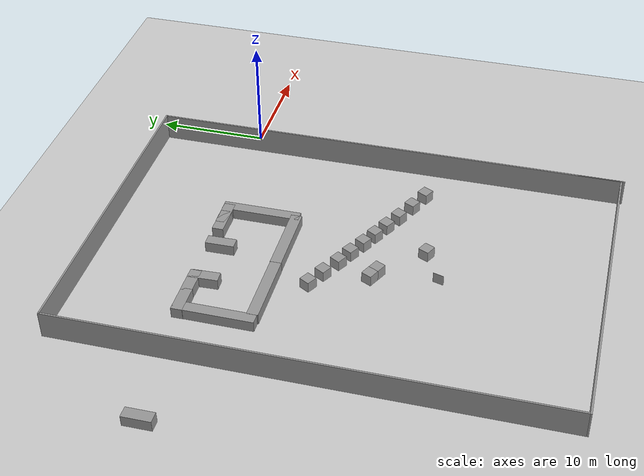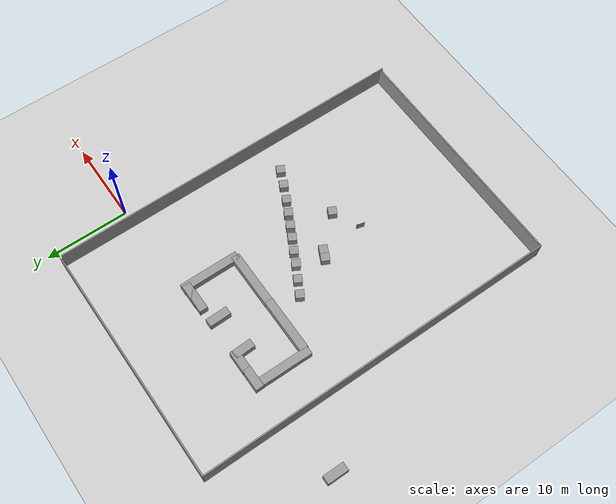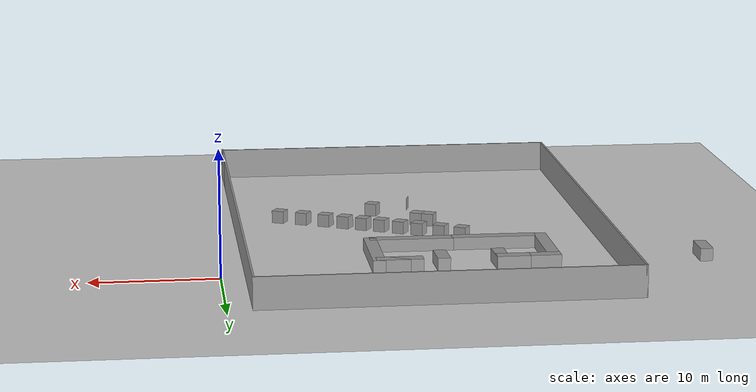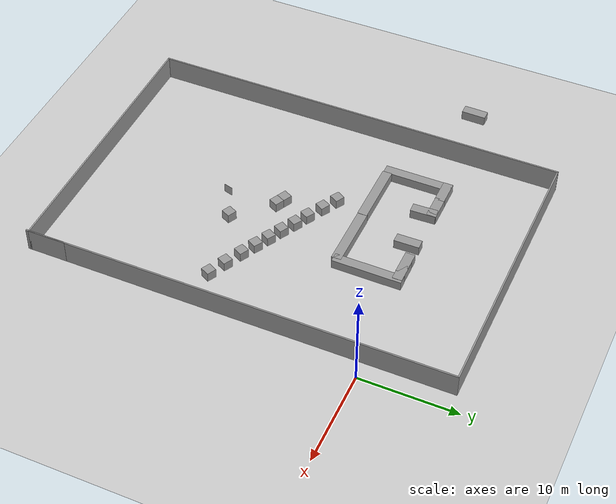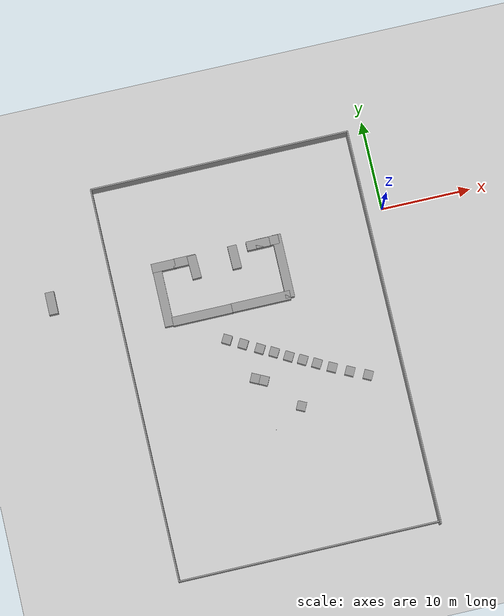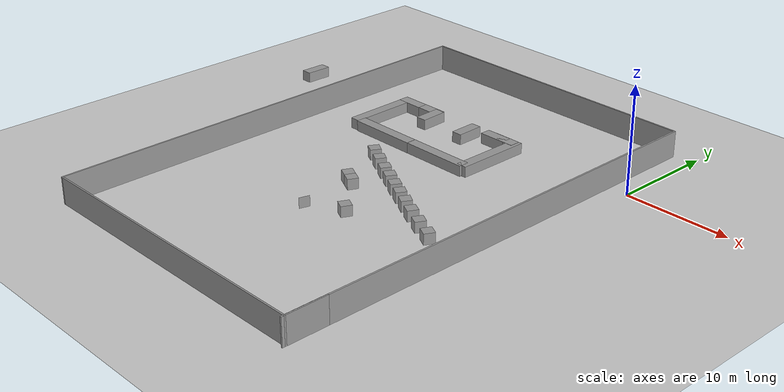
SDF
<sdf version="1.7">
 <world name="default">
  <light name="sun" type="directional">
   <pose>0 0 10 0 -0 0</pose>
   <diffuse>0.8 0.8 0.8 1</diffuse>
   <specular>0.1 0.1 0.1 1</specular>
   <attenuation>
    <range>1000</range>
    <constant>0.9</constant>
    <linear>0.01</linear>
    <quadratic>0.001</quadratic>
   </attenuation>
   <direction>-0.5 0.5 -1</direction>
   <spot><inner_angle>0</inner_angle><outer_angle>0</outer_angle><falloff>0</falloff></spot>
  </light>
  <model name="ground_plane">
   <static>1</static>
   <link name="link">
    <collision name="collision">
     <geometry><plane><normal>0 0 1</normal><size>100 100</size></plane></geometry>
     <surface><friction><ode><mu>100</mu><mu2>50</mu2></ode></friction></surface>
    </collision>
    <visual name="visual">
     <cast_shadows>0</cast_shadows>
     <geometry><plane><normal>0 0 1</normal><size>100 100</size></plane></geometry>
     <material>
      <script><uri>file://media/materials/scripts/gazebo.material</uri><name>Gazebo/Grey</name></script>
     </material>
    </visual>
   </link>
  </model>
  <gravity>0 0 -9.8</gravity>
  <magnetic_field>6e-06 2.3e-05 -4.2e-05</magnetic_field>
  <atmosphere type="adiabatic"/>
  <physics name="default_physics" default="0" type="ode">
   <max_step_size>0.001</max_step_size>
   <real_time_factor>1</real_time_factor>
   <real_time_update_rate>1000</real_time_update_rate>
  </physics>
  <scene><ambient>0.4 0.4 0.4 1</ambient><background>0.7 0.7 0.7 1</background><shadows>1</shadows></scene>
  <spherical_coordinates>
   <surface_model>EARTH_WGS84</surface_model>
   <latitude_deg>0</latitude_deg>
   <longitude_deg>0</longitude_deg>
   <elevation>0</elevation>
   <heading_deg>0</heading_deg>
  </spherical_coordinates>
  <model name="unit_box_0_4">
   <pose>-15.1805 -12.9183 0.5 0 0 -0.513511</pose>
   <link name="link">
    <inertial>
     <mass>1</mass>
     <inertia>
      <ixx>0.166667</ixx>
      <ixy>0</ixy>
      <ixz>0</ixz>
      <iyy>0.166667</iyy>
      <iyz>0</iyz>
      <izz>0.166667</izz>
     </inertia>
    </inertial>
    <collision name="collision"><geometry><box><size>1 1 1</size></box></geometry></collision>
    <visual name="visual">
     <geometry><box><size>1 1 1</size></box></geometry>
     <material>
      <script><name>Gazebo/Grey</name><uri>file://media/materials/scripts/gazebo.material</uri></script>
     </material>
    </visual>
   </link>
  </model>
  <model name="unit_box_0_5">
   <pose>-13.7189 -13.7168 0.5 0 0 -0.513514</pose>
   <link name="link">
    <inertial>
     <mass>1</mass>
     <inertia>
      <ixx>0.166667</ixx>
      <ixy>0</ixy>
      <ixz>0</ixz>
      <iyy>0.166667</iyy>
      <iyz>0</iyz>
      <izz>0.166667</izz>
     </inertia>
    </inertial>
    <collision name="collision"><geometry><box><size>1 1 1</size></box></geometry></collision>
    <visual name="visual">
     <geometry><box><size>1 1 1</size></box></geometry>
     <material>
      <script><name>Gazebo/Grey</name><uri>file://media/materials/scripts/gazebo.material</uri></script>
     </material>
    </visual>
   </link>
  </model>
  <model name="unit_box_0_6">
   <pose>-12.3182 -14.4283 0.5 0 0 -0.513514</pose>
   <link name="link">
    <inertial>
     <mass>1</mass>
     <inertia>
      <ixx>0.166667</ixx>
      <ixy>0</ixy>
      <ixz>0</ixz>
      <iyy>0.166667</iyy>
      <iyz>0</iyz>
      <izz>0.166667</izz>
     </inertia>
    </inertial>
    <collision name="collision"><geometry><box><size>1 1 1</size></box></geometry></collision>
    <visual name="visual">
     <geometry><box><size>1 1 1</size></box></geometry>
     <material>
      <script><name>Gazebo/Grey</name><uri>file://media/materials/scripts/gazebo.material</uri></script>
     </material>
    </visual>
   </link>
  </model>
  <model name="unit_box_0_7">
   <pose>-10.8931 -15.1597 0.5 0 0 -0.513514</pose>
   <link name="link">
    <inertial>
     <mass>1</mass>
     <inertia>
      <ixx>0.166667</ixx>
      <ixy>0</ixy>
      <ixz>0</ixz>
      <iyy>0.166667</iyy>
      <iyz>0</iyz>
      <izz>0.166667</izz>
     </inertia>
    </inertial>
    <collision name="collision"><geometry><box><size>1 1 1</size></box></geometry></collision>
    <visual name="visual">
     <geometry><box><size>1 1 1</size></box></geometry>
     <material>
      <script><name>Gazebo/Grey</name><uri>file://media/materials/scripts/gazebo.material</uri></script>
     </material>
    </visual>
   </link>
  </model>
  <model name="unit_box_0_8">
   <pose>-16.6097 -12.2004 0.5 0 0 -0.513512</pose>
   <link name="link">
    <inertial>
     <mass>1</mass>
     <inertia>
      <ixx>0.166667</ixx>
      <ixy>0</ixy>
      <ixz>0</ixz>
      <iyy>0.166667</iyy>
      <iyz>0</iyz>
      <izz>0.166667</izz>
     </inertia>
    </inertial>
    <collision name="collision"><geometry><box><size>1 1 1</size></box></geometry></collision>
    <visual name="visual">
     <geometry><box><size>1 1 1</size></box></geometry>
     <material>
      <script><name>Gazebo/Grey</name><uri>file://media/materials/scripts/gazebo.material</uri></script>
     </material>
    </visual>
   </link>
  </model>
  <model name="unit_box_0_9">
   <pose>-9.36829 -15.9496 0.5 0 0 -0.473583</pose>
   <link name="link">
    <inertial>
     <mass>1</mass>
     <inertia>
      <ixx>0.166667</ixx>
      <ixy>0</ixy>
      <ixz>0</ixz>
      <iyy>0.166667</iyy>
      <iyz>0</iyz>
      <izz>0.166667</izz>
     </inertia>
    </inertial>
    <collision name="collision"><geometry><box><size>1 1 1</size></box></geometry></collision>
    <visual name="visual">
     <geometry><box><size>1 1 1</size></box></geometry>
     <material>
      <script><name>Gazebo/Grey</name><uri>file://media/materials/scripts/gazebo.material</uri></script>
     </material>
    </visual>
   </link>
  </model>
  <model name="unit_box_0_10">
   <pose>-16.77 -21.0001 0.499982 -2e-06 -6e-06 -0.273966</pose>
   <link name="link">
    <inertial>
     <mass>1</mass>
     <inertia>
      <ixx>0.166667</ixx>
      <ixy>0</ixy>
      <ixz>0</ixz>
      <iyy>0.166667</iyy>
      <iyz>0</iyz>
      <izz>0.166667</izz>
     </inertia>
    </inertial>
    <collision name="collision"><geometry><box><size>0 1 1</size></box></geometry></collision>
    <visual name="visual">
     <geometry><box><size>0 1 1</size></box></geometry>
     <material>
      <script><name>Gazebo/Grey</name><uri>file://media/materials/scripts/gazebo.material</uri></script>
     </material>
    </visual>
   </link>
  </model>
  <model name="unit_box_0_11">
   <pose>-13.5985 -19.3454 0.5 0 0 -0.451932</pose>
   <link name="link">
    <inertial>
     <mass>1</mass>
     <inertia>
      <ixx>0.166667</ixx>
      <ixy>0</ixy>
      <ixz>0</ixz>
      <iyy>0.166667</iyy>
      <iyz>0</iyz>
      <izz>0.166667</izz>
     </inertia>
    </inertial>
    <collision name="collision"><geometry><box><size>1 1 1</size></box></geometry></collision>
    <visual name="visual">
     <geometry><box><size>1 1 1</size></box></geometry>
     <material>
      <script><name>Gazebo/Grey</name><uri>file://media/materials/scripts/gazebo.material</uri></script>
     </material>
    </visual>
   </link>
  </model>
  <model name="square_2">
   <pose>-16.3327 -13.1785 0 0 -0 -3.13987</pose>
   <link name="Wall_10">
    <collision name="Wall_10_Collision">
     <geometry><box><size>4 0.15 2.5</size></box></geometry>
     <pose>0 0 1.25 0 -0 0</pose>
    </collision>
    <visual name="Wall_10_Visual">
     <pose>0 0 1.25 0 -0 0</pose>
     <geometry><box><size>4 0.15 2.5</size></box></geometry>
     <material>
      <script><uri>file://media/materials/scripts/gazebo.material</uri><name>Gazebo/Grey</name></script>
      <ambient>1 1 1 1</ambient>
     </material>
    </visual>
    <pose>-14.425 19.875 0 0 0 -1.5708</pose>
   </link>
   <link name="Wall_6">
    <collision name="Wall_6_Collision">
     <geometry><box><size>44.25 0.15 2.5</size></box></geometry>
     <pose>0 0 1.25 0 -0 0</pose>
    </collision>
    <visual name="Wall_6_Visual">
     <pose>0 0 1.25 0 -0 0</pose>
     <geometry><box><size>44.25 0.15 2.5</size></box></geometry>
     <material>
      <script><uri>file://media/materials/scripts/gazebo.material</uri><name>Gazebo/Grey</name></script>
      <ambient>1 1 1 1</ambient>
     </material>
    </visual>
    <pose>-14.425 0 0 0 0 -1.5708</pose>
   </link>
   <link name="Wall_7">
    <collision name="Wall_7_Collision">
     <geometry><box><size>29 0.15 2.5</size></box></geometry>
     <pose>0 0 1.25 0 -0 0</pose>
    </collision>
    <visual name="Wall_7_Visual">
     <pose>0 0 1.25 0 -0 0</pose>
     <geometry><box><size>29 0.15 2.5</size></box></geometry>
     <material>
      <script><uri>file://media/materials/scripts/gazebo.material</uri><name>Gazebo/Grey</name></script>
      <ambient>1 1 1 1</ambient>
     </material>
    </visual>
    <pose>0 -22.05 0 0 -0 0</pose>
   </link>
   <link name="Wall_8">
    <collision name="Wall_8_Collision">
     <geometry><box><size>44 0.15 2.5</size></box></geometry>
     <pose>0 0 1.25 0 -0 0</pose>
    </collision>
    <visual name="Wall_8_Visual">
     <pose>0 0 1.25 0 -0 0</pose>
     <geometry><box><size>44 0.15 2.5</size></box></geometry>
     <material>
      <script><uri>file://media/materials/scripts/gazebo.material</uri><name>Gazebo/Grey</name></script>
      <ambient>1 1 1 1</ambient>
     </material>
    </visual>
    <pose>14.425 -0.125 0 0 -0 1.5708</pose>
   </link>
   <link name="Wall_9">
    <collision name="Wall_9_Collision">
     <geometry><box><size>29 0.15 2.5</size></box></geometry>
     <pose>0 0 1.25 0 -0 0</pose>
    </collision>
    <visual name="Wall_9_Visual">
     <pose>0 0 1.25 0 -0 0</pose>
     <geometry><box><size>29 0.15 2.5</size></box></geometry>
     <material>
      <script><uri>file://media/materials/scripts/gazebo.material</uri><name>Gazebo/Grey</name></script>
      <ambient>1 1 1 1</ambient>
     </material>
    </visual>
    <pose>0 21.8 0 0 -0 3.14159</pose>
   </link>
   <static>1</static>
  </model>
  <model name="unit_box_0_clone_clone_0">
   <link name="link">
    <inertial>
     <mass>1</mass>
     <inertia>
      <ixx>0.166667</ixx>
      <ixy>0</ixy>
      <ixz>0</ixz>
      <iyy>0.166667</iyy>
      <iyz>0</iyz>
      <izz>0.166667</izz>
     </inertia>
    </inertial>
    <visual name="visual">
     <geometry><box><size>6.66128 1 1</size></box></geometry>
     <material>
      <script><name>Gazebo/Grey</name><uri>file://media/materials/scripts/gazebo.material</uri></script>
      <ambient>0.3 0.3 0.3 1</ambient>
      <diffuse>0.7 0.7 0.7 1</diffuse>
      <specular>0.01 0.01 0.01 1</specular>
      <emissive>0 0 0 1</emissive>
     </material>
    </visual>
    <collision name="collision">
     <geometry><box><size>6.66128 1 1</size></box></geometry>
     <surface>
      <friction>
       <ode><mu>1</mu><mu2>1</mu2><fdir1>0 0 0</fdir1><slip1>0</slip1><slip2>0</slip2></ode>
       <torsional>
        <coefficient>1</coefficient>
        <patch_radius>0</patch_radius>
        <surface_radius>0</surface_radius>
        <use_patch_radius>1</use_patch_radius>
        <ode><slip>0</slip></ode>
       </torsional>
      </friction>
      <bounce><restitution_coefficient>0</restitution_coefficient><threshold>1e+06</threshold></bounce>
      <contact>
       <collide_without_contact>0</collide_without_contact>
       <collide_without_contact_bitmask>1</collide_without_contact_bitmask>
       <collide_bitmask>1</collide_bitmask>
       <ode>
        <soft_cfm>0</soft_cfm>
        <soft_erp>0.2</soft_erp>
        <kp>1e+13</kp>
        <kd>1</kd>
        <max_vel>0.01</max_vel>
        <min_depth>0</min_depth>
       </ode>
       <bullet>
        <split_impulse>1</split_impulse>
        <split_impulse_penetration_threshold>-0.01</split_impulse_penetration_threshold>
        <soft_cfm>0</soft_cfm>
        <soft_erp>0.2</soft_erp>
        <kp>1e+13</kp>
        <kd>1</kd>
       </bullet>
      </contact>
     </surface>
    </collision>
   </link>
   <static>1</static>
   <pose>-15.3747 -7.16106 0.492361 -1e-06 -0.002295 0.000369</pose>
  </model>
  <model name="unit_box_0_2_0">
   <link name="link">
    <inertial>
     <mass>1</mass>
     <inertia>
      <ixx>0.166667</ixx>
      <ixy>0</ixy>
      <ixz>0</ixz>
      <iyy>0.166667</iyy>
      <iyz>0</iyz>
      <izz>0.166667</izz>
     </inertia>
    </inertial>
    <visual name="visual">
     <geometry><box><size>1 7.14191 1</size></box></geometry>
     <material>
      <script><name>Gazebo/Grey</name><uri>file://media/materials/scripts/gazebo.material</uri></script>
      <ambient>0.3 0.3 0.3 1</ambient>
      <diffuse>0.7 0.7 0.7 1</diffuse>
      <specular>0.01 0.01 0.01 1</specular>
      <emissive>0 0 0 1</emissive>
     </material>
    </visual>
    <collision name="collision">
     <geometry><box><size>1 7.14191 1</size></box></geometry>
     <surface>
      <friction>
       <ode><mu>1</mu><mu2>1</mu2><fdir1>0 0 0</fdir1><slip1>0</slip1><slip2>0</slip2></ode>
       <torsional>
        <coefficient>1</coefficient>
        <patch_radius>0</patch_radius>
        <surface_radius>0</surface_radius>
        <use_patch_radius>1</use_patch_radius>
        <ode><slip>0</slip></ode>
       </torsional>
      </friction>
      <bounce><restitution_coefficient>0</restitution_coefficient><threshold>1e+06</threshold></bounce>
      <contact>
       <collide_without_contact>0</collide_without_contact>
       <collide_without_contact_bitmask>1</collide_without_contact_bitmask>
       <collide_bitmask>1</collide_bitmask>
       <ode>
        <soft_cfm>0</soft_cfm>
        <soft_erp>0.2</soft_erp>
        <kp>1e+13</kp>
        <kd>1</kd>
        <max_vel>0.01</max_vel>
        <min_depth>0</min_depth>
       </ode>
       <bullet>
        <split_impulse>1</split_impulse>
        <split_impulse_penetration_threshold>-0.01</split_impulse_penetration_threshold>
        <soft_cfm>0</soft_cfm>
        <soft_erp>0.2</soft_erp>
        <kp>1e+13</kp>
        <kd>1</kd>
       </bullet>
      </contact>
     </surface>
    </collision>
   </link>
   <static>1</static>
   <pose>-12.0923 -3.87647 0.489656 -0.002898 -3e-06 -0.000666</pose>
  </model>
  <model name="unit_box_0_0_clone_0">
   <link name="link">
    <inertial>
     <mass>1</mass>
     <inertia>
      <ixx>0.166667</ixx>
      <ixy>0</ixy>
      <ixz>0</ixz>
      <iyy>0.166667</iyy>
      <iyz>0</iyz>
      <izz>0.166667</izz>
     </inertia>
    </inertial>
    <visual name="visual">
     <geometry><box><size>1 2.50249 1</size></box></geometry>
     <material>
      <script><name>Gazebo/Grey</name><uri>file://media/materials/scripts/gazebo.material</uri></script>
      <ambient>0.3 0.3 0.3 1</ambient>
      <diffuse>0.7 0.7 0.7 1</diffuse>
      <specular>0.01 0.01 0.01 1</specular>
      <emissive>0 0 0 1</emissive>
     </material>
    </visual>
    <collision name="collision">
     <geometry><box><size>1 2.50249 1</size></box></geometry>
     <surface>
      <friction>
       <ode><mu>1</mu><mu2>1</mu2><fdir1>0 0 0</fdir1><slip1>0</slip1><slip2>0</slip2></ode>
       <torsional>
        <coefficient>1</coefficient>
        <patch_radius>0</patch_radius>
        <surface_radius>0</surface_radius>
        <use_patch_radius>1</use_patch_radius>
        <ode><slip>0</slip></ode>
       </torsional>
      </friction>
      <bounce><restitution_coefficient>0</restitution_coefficient><threshold>1e+06</threshold></bounce>
      <contact>
       <collide_without_contact>0</collide_without_contact>
       <collide_without_contact_bitmask>1</collide_without_contact_bitmask>
       <collide_bitmask>1</collide_bitmask>
       <ode>
        <soft_cfm>0</soft_cfm>
        <soft_erp>0.2</soft_erp>
        <kp>1e+13</kp>
        <kd>1</kd>
        <max_vel>0.01</max_vel>
        <min_depth>0</min_depth>
       </ode>
       <bullet>
        <split_impulse>1</split_impulse>
        <split_impulse_penetration_threshold>-0.01</split_impulse_penetration_threshold>
        <soft_cfm>0</soft_cfm>
        <soft_erp>0.2</soft_erp>
        <kp>1e+13</kp>
        <kd>1</kd>
       </bullet>
      </contact>
     </surface>
    </collision>
   </link>
   <static>1</static>
   <pose>-37.7219 -2.24399 0.517677 -0.012717 -0.003635 -0.004131</pose>
  </model>
  <model name="unit_box_0_2_clone_0_0">
   <link name="link">
    <inertial>
     <mass>1</mass>
     <inertia>
      <ixx>0.166667</ixx>
      <ixy>0</ixy>
      <ixz>0</ixz>
      <iyy>0.166667</iyy>
      <iyz>0</iyz>
      <izz>0.166667</izz>
     </inertia>
    </inertial>
    <visual name="visual">
     <geometry><box><size>1 7.07888 1</size></box></geometry>
     <material>
      <script><name>Gazebo/Grey</name><uri>file://media/materials/scripts/gazebo.material</uri></script>
      <ambient>0.3 0.3 0.3 1</ambient>
      <diffuse>0.7 0.7 0.7 1</diffuse>
      <specular>0.01 0.01 0.01 1</specular>
      <emissive>0 0 0 1</emissive>
     </material>
    </visual>
    <collision name="collision">
     <geometry><box><size>1 7.07888 1</size></box></geometry>
     <surface>
      <friction>
       <ode><mu>1</mu><mu2>1</mu2><fdir1>0 0 0</fdir1><slip1>0</slip1><slip2>0</slip2></ode>
       <torsional>
        <coefficient>1</coefficient>
        <patch_radius>0</patch_radius>
        <surface_radius>0</surface_radius>
        <use_patch_radius>1</use_patch_radius>
        <ode><slip>0</slip></ode>
       </torsional>
      </friction>
      <bounce><restitution_coefficient>0</restitution_coefficient><threshold>1e+06</threshold></bounce>
      <contact>
       <collide_without_contact>0</collide_without_contact>
       <collide_without_contact_bitmask>1</collide_without_contact_bitmask>
       <collide_bitmask>1</collide_bitmask>
       <ode>
        <soft_cfm>0</soft_cfm>
        <soft_erp>0.2</soft_erp>
        <kp>1e+13</kp>
        <kd>1</kd>
        <max_vel>0.01</max_vel>
        <min_depth>0</min_depth>
       </ode>
       <bullet>
        <split_impulse>1</split_impulse>
        <split_impulse_penetration_threshold>-0.01</split_impulse_penetration_threshold>
        <soft_cfm>0</soft_cfm>
        <soft_erp>0.2</soft_erp>
        <kp>1e+13</kp>
        <kd>1</kd>
       </bullet>
      </contact>
     </surface>
    </collision>
   </link>
   <static>1</static>
   <pose>-25.682 -4.0598 0.490046 0.002814 2e-06 -0.000613</pose>
  </model>
  <model name="unit_box_0_0_0_0">
   <link name="link">
    <inertial>
     <mass>1</mass>
     <inertia>
      <ixx>0.166667</ixx>
      <ixy>0</ixy>
      <ixz>0</ixz>
      <iyy>0.166667</iyy>
      <iyz>0</iyz>
      <izz>0.166667</izz>
     </inertia>
    </inertial>
    <visual name="visual">
     <geometry><box><size>1 2.59665 1</size></box></geometry>
     <material>
      <script><name>Gazebo/Grey</name><uri>file://media/materials/scripts/gazebo.material</uri></script>
      <ambient>0.3 0.3 0.3 1</ambient>
      <diffuse>0.7 0.7 0.7 1</diffuse>
      <specular>0.01 0.01 0.01 1</specular>
      <emissive>0 0 0 1</emissive>
     </material>
    </visual>
    <collision name="collision">
     <geometry><box><size>1 2.59665 1</size></box></geometry>
     <surface>
      <friction>
       <ode><mu>1</mu><mu2>1</mu2><fdir1>0 0 0</fdir1><slip1>0</slip1><slip2>0</slip2></ode>
       <torsional>
        <coefficient>1</coefficient>
        <patch_radius>0</patch_radius>
        <surface_radius>0</surface_radius>
        <use_patch_radius>1</use_patch_radius>
        <ode><slip>0</slip></ode>
       </torsional>
      </friction>
      <bounce><restitution_coefficient>0</restitution_coefficient><threshold>1e+06</threshold></bounce>
      <contact>
       <collide_without_contact>0</collide_without_contact>
       <collide_without_contact_bitmask>1</collide_without_contact_bitmask>
       <collide_bitmask>1</collide_bitmask>
       <ode>
        <soft_cfm>0</soft_cfm>
        <soft_erp>0.2</soft_erp>
        <kp>1e+13</kp>
        <kd>1</kd>
        <max_vel>0.01</max_vel>
        <min_depth>0</min_depth>
       </ode>
       <bullet>
        <split_impulse>1</split_impulse>
        <split_impulse_penetration_threshold>-0.01</split_impulse_penetration_threshold>
        <soft_cfm>0</soft_cfm>
        <soft_erp>0.2</soft_erp>
        <kp>1e+13</kp>
        <kd>1</kd>
       </bullet>
      </contact>
     </surface>
    </collision>
   </link>
   <static>1</static>
   <pose>-24.9071 -0.955278 0.5 0 -0 1.57248</pose>
  </model>
  <model name="unit_box_0_clone_clone_0_clone">
   <link name="link">
    <inertial>
     <mass>1</mass>
     <inertia>
      <ixx>0.166667</ixx>
      <ixy>0</ixy>
      <ixz>0</ixz>
      <iyy>0.166667</iyy>
      <iyz>0</iyz>
      <izz>0.166667</izz>
     </inertia>
    </inertial>
    <visual name="visual">
     <geometry><box><size>6.66128 1 1</size></box></geometry>
     <material>
      <script><name>Gazebo/Grey</name><uri>file://media/materials/scripts/gazebo.material</uri></script>
      <ambient>0.3 0.3 0.3 1</ambient>
      <diffuse>0.7 0.7 0.7 1</diffuse>
      <specular>0.01 0.01 0.01 1</specular>
      <emissive>0 0 0 1</emissive>
     </material>
    </visual>
    <collision name="collision">
     <geometry><box><size>6.66128 1 1</size></box></geometry>
     <surface>
      <friction>
       <ode><mu>1</mu><mu2>1</mu2><fdir1>0 0 0</fdir1><slip1>0</slip1><slip2>0</slip2></ode>
       <torsional>
        <coefficient>1</coefficient>
        <patch_radius>0</patch_radius>
        <surface_radius>0</surface_radius>
        <use_patch_radius>1</use_patch_radius>
        <ode><slip>0</slip></ode>
       </torsional>
      </friction>
      <bounce><restitution_coefficient>0</restitution_coefficient><threshold>1e+06</threshold></bounce>
      <contact>
       <collide_without_contact>0</collide_without_contact>
       <collide_without_contact_bitmask>1</collide_without_contact_bitmask>
       <collide_bitmask>1</collide_bitmask>
       <ode>
        <soft_cfm>0</soft_cfm>
        <soft_erp>0.2</soft_erp>
        <kp>1e+13</kp>
        <kd>1</kd>
        <max_vel>0.01</max_vel>
        <min_depth>0</min_depth>
       </ode>
       <bullet>
        <split_impulse>1</split_impulse>
        <split_impulse_penetration_threshold>-0.01</split_impulse_penetration_threshold>
        <soft_cfm>0</soft_cfm>
        <soft_erp>0.2</soft_erp>
        <kp>1e+13</kp>
        <kd>1</kd>
       </bullet>
      </contact>
     </surface>
    </collision>
   </link>
   <static>1</static>
   <pose>-21.9306 -7.19031 0.492361 -1e-06 -0.002295 0.000369</pose>
  </model>
  <model name="unit_box_0_0_0_0_clone">
   <link name="link">
    <inertial>
     <mass>1</mass>
     <inertia>
      <ixx>0.166667</ixx>
      <ixy>0</ixy>
      <ixz>0</ixz>
      <iyy>0.166667</iyy>
      <iyz>0</iyz>
      <izz>0.166667</izz>
     </inertia>
    </inertial>
    <visual name="visual">
     <geometry><box><size>1 2.59665 1</size></box></geometry>
     <material>
      <script><name>Gazebo/Grey</name><uri>file://media/materials/scripts/gazebo.material</uri></script>
      <ambient>0.3 0.3 0.3 1</ambient>
      <diffuse>0.7 0.7 0.7 1</diffuse>
      <specular>0.01 0.01 0.01 1</specular>
      <emissive>0 0 0 1</emissive>
     </material>
    </visual>
    <collision name="collision">
     <geometry><box><size>1 2.59665 1</size></box></geometry>
     <surface>
      <friction>
       <ode><mu>1</mu><mu2>1</mu2><fdir1>0 0 0</fdir1><slip1>0</slip1><slip2>0</slip2></ode>
       <torsional>
        <coefficient>1</coefficient>
        <patch_radius>0</patch_radius>
        <surface_radius>0</surface_radius>
        <use_patch_radius>1</use_patch_radius>
        <ode><slip>0</slip></ode>
       </torsional>
      </friction>
      <bounce><restitution_coefficient>0</restitution_coefficient><threshold>1e+06</threshold></bounce>
      <contact>
       <collide_without_contact>0</collide_without_contact>
       <collide_without_contact_bitmask>1</collide_without_contact_bitmask>
       <collide_bitmask>1</collide_bitmask>
       <ode>
        <soft_cfm>0</soft_cfm>
        <soft_erp>0.2</soft_erp>
        <kp>1e+13</kp>
        <kd>1</kd>
        <max_vel>0.01</max_vel>
        <min_depth>0</min_depth>
       </ode>
       <bullet>
        <split_impulse>1</split_impulse>
        <split_impulse_penetration_threshold>-0.01</split_impulse_penetration_threshold>
        <soft_cfm>0</soft_cfm>
        <soft_erp>0.2</soft_erp>
        <kp>1e+13</kp>
        <kd>1</kd>
       </bullet>
      </contact>
     </surface>
    </collision>
   </link>
   <static>1</static>
   <pose>-22.5086 -0.933551 0.5 0 -0 1.57248</pose>
  </model>
  <model name="unit_box_0_0_0_0_clone_0">
   <link name="link">
    <inertial>
     <mass>1</mass>
     <inertia>
      <ixx>0.166667</ixx>
      <ixy>0</ixy>
      <ixz>0</ixz>
      <iyy>0.166667</iyy>
      <iyz>0</iyz>
      <izz>0.166667</izz>
     </inertia>
    </inertial>
    <visual name="visual">
     <geometry><box><size>1 2.59665 1</size></box></geometry>
     <material>
      <script><name>Gazebo/Grey</name><uri>file://media/materials/scripts/gazebo.material</uri></script>
      <ambient>0.3 0.3 0.3 1</ambient>
      <diffuse>0.7 0.7 0.7 1</diffuse>
      <specular>0.01 0.01 0.01 1</specular>
      <emissive>0 0 0 1</emissive>
     </material>
    </visual>
    <collision name="collision">
     <geometry><box><size>1 2.59665 1</size></box></geometry>
     <surface>
      <friction>
       <ode><mu>1</mu><mu2>1</mu2><fdir1>0 0 0</fdir1><slip1>0</slip1><slip2>0</slip2></ode>
       <torsional>
        <coefficient>1</coefficient>
        <patch_radius>0</patch_radius>
        <surface_radius>0</surface_radius>
        <use_patch_radius>1</use_patch_radius>
        <ode><slip>0</slip></ode>
       </torsional>
      </friction>
      <bounce><restitution_coefficient>0</restitution_coefficient><threshold>1e+06</threshold></bounce>
      <contact>
       <collide_without_contact>0</collide_without_contact>
       <collide_without_contact_bitmask>1</collide_without_contact_bitmask>
       <collide_bitmask>1</collide_bitmask>
       <ode>
        <soft_cfm>0</soft_cfm>
        <soft_erp>0.2</soft_erp>
        <kp>1e+13</kp>
        <kd>1</kd>
        <max_vel>0.01</max_vel>
        <min_depth>0</min_depth>
       </ode>
       <bullet>
        <split_impulse>1</split_impulse>
        <split_impulse_penetration_threshold>-0.01</split_impulse_penetration_threshold>
        <soft_cfm>0</soft_cfm>
        <soft_erp>0.2</soft_erp>
        <kp>1e+13</kp>
        <kd>1</kd>
       </bullet>
      </contact>
     </surface>
    </collision>
   </link>
   <static>1</static>
   <pose>-13.2038 -0.836912 0.5 0 -0 1.57248</pose>
  </model>
  <model name="unit_box_0_0_0_0_clone_2">
   <link name="link">
    <inertial>
     <mass>1</mass>
     <inertia>
      <ixx>0.166667</ixx>
      <ixy>0</ixy>
      <ixz>0</ixz>
      <iyy>0.166667</iyy>
      <iyz>0</iyz>
      <izz>0.166667</izz>
     </inertia>
    </inertial>
    <visual name="visual">
     <geometry><box><size>1 2.59665 1</size></box></geometry>
     <material>
      <script><name>Gazebo/Grey</name><uri>file://media/materials/scripts/gazebo.material</uri></script>
      <ambient>0.3 0.3 0.3 1</ambient>
      <diffuse>0.7 0.7 0.7 1</diffuse>
      <specular>0.01 0.01 0.01 1</specular>
      <emissive>0 0 0 1</emissive>
     </material>
    </visual>
    <collision name="collision">
     <geometry><box><size>1 2.59665 1</size></box></geometry>
     <surface>
      <friction>
       <ode><mu>1</mu><mu2>1</mu2><fdir1>0 0 0</fdir1><slip1>0</slip1><slip2>0</slip2></ode>
       <torsional>
        <coefficient>1</coefficient>
        <patch_radius>0</patch_radius>
        <surface_radius>0</surface_radius>
        <use_patch_radius>1</use_patch_radius>
        <ode><slip>0</slip></ode>
       </torsional>
      </friction>
      <bounce><restitution_coefficient>0</restitution_coefficient><threshold>1e+06</threshold></bounce>
      <contact>
       <collide_without_contact>0</collide_without_contact>
       <collide_without_contact_bitmask>1</collide_without_contact_bitmask>
       <collide_bitmask>1</collide_bitmask>
       <ode>
        <soft_cfm>0</soft_cfm>
        <soft_erp>0.2</soft_erp>
        <kp>1e+13</kp>
        <kd>1</kd>
        <max_vel>0.01</max_vel>
        <min_depth>0</min_depth>
       </ode>
       <bullet>
        <split_impulse>1</split_impulse>
        <split_impulse_penetration_threshold>-0.01</split_impulse_penetration_threshold>
        <soft_cfm>0</soft_cfm>
        <soft_erp>0.2</soft_erp>
        <kp>1e+13</kp>
        <kd>1</kd>
       </bullet>
      </contact>
     </surface>
    </collision>
   </link>
   <static>1</static>
   <pose>-17.0673 -1.71838 0.5 0 0 -3.12453</pose>
  </model>
  <model name="unit_box_0_0_0_0_clone_3">
   <link name="link">
    <inertial>
     <mass>1</mass>
     <inertia>
      <ixx>0.166667</ixx>
      <ixy>0</ixy>
      <ixz>0</ixz>
      <iyy>0.166667</iyy>
      <iyz>0</iyz>
      <izz>0.166667</izz>
     </inertia>
    </inertial>
    <visual name="visual">
     <geometry><box><size>1 2.59665 1</size></box></geometry>
     <material>
      <script><name>Gazebo/Grey</name><uri>file://media/materials/scripts/gazebo.material</uri></script>
      <ambient>0.3 0.3 0.3 1</ambient>
      <diffuse>0.7 0.7 0.7 1</diffuse>
      <specular>0.01 0.01 0.01 1</specular>
      <emissive>0 0 0 1</emissive>
     </material>
    </visual>
    <collision name="collision">
     <geometry><box><size>1 2.59665 1</size></box></geometry>
     <surface>
      <friction>
       <ode><mu>1</mu><mu2>1</mu2><fdir1>0 0 0</fdir1><slip1>0</slip1><slip2>0</slip2></ode>
       <torsional>
        <coefficient>1</coefficient>
        <patch_radius>0</patch_radius>
        <surface_radius>0</surface_radius>
        <use_patch_radius>1</use_patch_radius>
        <ode><slip>0</slip></ode>
       </torsional>
      </friction>
      <bounce><restitution_coefficient>0</restitution_coefficient><threshold>1e+06</threshold></bounce>
      <contact>
       <collide_without_contact>0</collide_without_contact>
       <collide_without_contact_bitmask>1</collide_without_contact_bitmask>
       <collide_bitmask>1</collide_bitmask>
       <ode>
        <soft_cfm>0</soft_cfm>
        <soft_erp>0.2</soft_erp>
        <kp>1e+13</kp>
        <kd>1</kd>
        <max_vel>0.01</max_vel>
        <min_depth>0</min_depth>
       </ode>
       <bullet>
        <split_impulse>1</split_impulse>
        <split_impulse_penetration_threshold>-0.01</split_impulse_penetration_threshold>
        <soft_cfm>0</soft_cfm>
        <soft_erp>0.2</soft_erp>
        <kp>1e+13</kp>
        <kd>1</kd>
       </bullet>
      </contact>
     </surface>
    </collision>
   </link>
   <static>1</static>
   <pose>-21.6264 -1.80185 0.5 0 -0 0.037671</pose>
  </model>
  <model name="unit_box_0_11_clone">
   <pose>-16.9434 -15.7133 0.5 0 -0 -0.451925</pose>
   <link name="link">
    <inertial>
     <mass>1</mass>
     <inertia>
      <ixx>0.166667</ixx>
      <ixy>0</ixy>
      <ixz>0</ixz>
      <iyy>0.166667</iyy>
      <iyz>0</iyz>
      <izz>0.166667</izz>
     </inertia>
    </inertial>
    <collision name="collision"><geometry><box><size>1 1 1</size></box></geometry></collision>
    <visual name="visual">
     <geometry><box><size>1 1 1</size></box></geometry>
     <material>
      <script><name>Gazebo/Grey</name><uri>file://media/materials/scripts/gazebo.material</uri></script>
     </material>
    </visual>
   </link>
  </model>
  <model name="unit_box_0_11_clone_0">
   <pose>-17.843 -15.2766 0.5 0 0 -0.45193</pose>
   <link name="link">
    <inertial>
     <mass>1</mass>
     <inertia>
      <ixx>0.166667</ixx>
      <ixy>0</ixy>
      <ixz>0</ixz>
      <iyy>0.166667</iyy>
      <iyz>0</iyz>
      <izz>0.166667</izz>
     </inertia>
    </inertial>
    <collision name="collision"><geometry><box><size>1 1 1</size></box></geometry></collision>
    <visual name="visual">
     <geometry><box><size>1 1 1</size></box></geometry>
     <material>
      <script><name>Gazebo/Grey</name><uri>file://media/materials/scripts/gazebo.material</uri></script>
     </material>
    </visual>
   </link>
  </model>
  <model name="unit_box_0_0_0_0_clone_0_clone">
   <link name="link">
    <inertial>
     <mass>1</mass>
     <inertia>
      <ixx>0.166667</ixx>
      <ixy>0</ixy>
      <ixz>0</ixz>
      <iyy>0.166667</iyy>
      <iyz>0</iyz>
      <izz>0.166667</izz>
     </inertia>
    </inertial>
    <visual name="visual">
     <geometry><box><size>1 2.59665 1</size></box></geometry>
     <material>
      <script><name>Gazebo/Grey</name><uri>file://media/materials/scripts/gazebo.material</uri></script>
      <ambient>0.3 0.3 0.3 1</ambient>
      <diffuse>0.7 0.7 0.7 1</diffuse>
      <specular>0.01 0.01 0.01 1</specular>
      <emissive>0 0 0 1</emissive>
     </material>
    </visual>
    <collision name="collision">
     <geometry><box><size>1 2.59665 1</size></box></geometry>
     <surface>
      <friction>
       <ode><mu>1</mu><mu2>1</mu2><fdir1>0 0 0</fdir1><slip1>0</slip1><slip2>0</slip2></ode>
       <torsional>
        <coefficient>1</coefficient>
        <patch_radius>0</patch_radius>
        <surface_radius>0</surface_radius>
        <use_patch_radius>1</use_patch_radius>
        <ode><slip>0</slip></ode>
       </torsional>
      </friction>
      <bounce><restitution_coefficient>0</restitution_coefficient><threshold>1e+06</threshold></bounce>
      <contact>
       <collide_without_contact>0</collide_without_contact>
       <collide_without_contact_bitmask>1</collide_without_contact_bitmask>
       <collide_bitmask>1</collide_bitmask>
       <ode>
        <soft_cfm>0</soft_cfm>
        <soft_erp>0.2</soft_erp>
        <kp>1e+13</kp>
        <kd>1</kd>
        <max_vel>0.01</max_vel>
        <min_depth>0</min_depth>
       </ode>
       <bullet>
        <split_impulse>1</split_impulse>
        <split_impulse_penetration_threshold>-0.01</split_impulse_penetration_threshold>
        <soft_cfm>0</soft_cfm>
        <soft_erp>0.2</soft_erp>
        <kp>1e+13</kp>
        <kd>1</kd>
       </bullet>
      </contact>
     </surface>
    </collision>
   </link>
   <static>1</static>
   <pose>-14.2268 -0.866818 0.5 0 -0 1.57248</pose>
  </model>
  <model name="unit_box_0_8_clone">
   <pose>-18.2744 -11.2852 0.5 0 0 -0.513512</pose>
   <link name="link">
    <inertial>
     <mass>1</mass>
     <inertia>
      <ixx>0.166667</ixx>
      <ixy>0</ixy>
      <ixz>0</ixz>
      <iyy>0.166667</iyy>
      <iyz>0</iyz>
      <izz>0.166667</izz>
     </inertia>
    </inertial>
    <collision name="collision"><geometry><box><size>1 1 1</size></box></geometry></collision>
    <visual name="visual">
     <geometry><box><size>1 1 1</size></box></geometry>
     <material>
      <script><name>Gazebo/Grey</name><uri>file://media/materials/scripts/gazebo.material</uri></script>
     </material>
    </visual>
   </link>
  </model>
  <model name="unit_box_0_8_clone_0">
   <pose>-19.8839 -10.4111 0.5 0 -0 -0.513512</pose>
   <link name="link">
    <inertial>
     <mass>1</mass>
     <inertia>
      <ixx>0.166667</ixx>
      <ixy>0</ixy>
      <ixz>0</ixz>
      <iyy>0.166667</iyy>
      <iyz>0</iyz>
      <izz>0.166667</izz>
     </inertia>
    </inertial>
    <collision name="collision"><geometry><box><size>1 1 1</size></box></geometry></collision>
    <visual name="visual">
     <geometry><box><size>1 1 1</size></box></geometry>
     <material>
      <script><name>Gazebo/Grey</name><uri>file://media/materials/scripts/gazebo.material</uri></script>
     </material>
    </visual>
   </link>
  </model>
  <model name="unit_box_0_9_clone">
   <pose>-7.5845 -16.8029 0.5 0 0 -0.473583</pose>
   <link name="link">
    <inertial>
     <mass>1</mass>
     <inertia>
      <ixx>0.166667</ixx>
      <ixy>0</ixy>
      <ixz>0</ixz>
      <iyy>0.166667</iyy>
      <iyz>0</iyz>
      <izz>0.166667</izz>
     </inertia>
    </inertial>
    <collision name="collision"><geometry><box><size>1 1 1</size></box></geometry></collision>
    <visual name="visual">
     <geometry><box><size>1 1 1</size></box></geometry>
     <material>
      <script><name>Gazebo/Grey</name><uri>file://media/materials/scripts/gazebo.material</uri></script>
     </material>
    </visual>
   </link>
  </model>
  <model name="unit_box_0_9_clone_0">
   <pose>-5.73143 -17.6381 0.5 0 -0 -0.473583</pose>
   <link name="link">
    <inertial>
     <mass>1</mass>
     <inertia>
      <ixx>0.166667</ixx>
      <ixy>0</ixy>
      <ixz>0</ixz>
      <iyy>0.166667</iyy>
      <iyz>0</iyz>
      <izz>0.166667</izz>
     </inertia>
    </inertial>
    <collision name="collision"><geometry><box><size>1 1 1</size></box></geometry></collision>
    <visual name="visual">
     <geometry><box><size>1 1 1</size></box></geometry>
     <material>
      <script><name>Gazebo/Grey</name><uri>file://media/materials/scripts/gazebo.material</uri></script>
     </material>
    </visual>
   </link>
  </model>
 </world>
</sdf>
